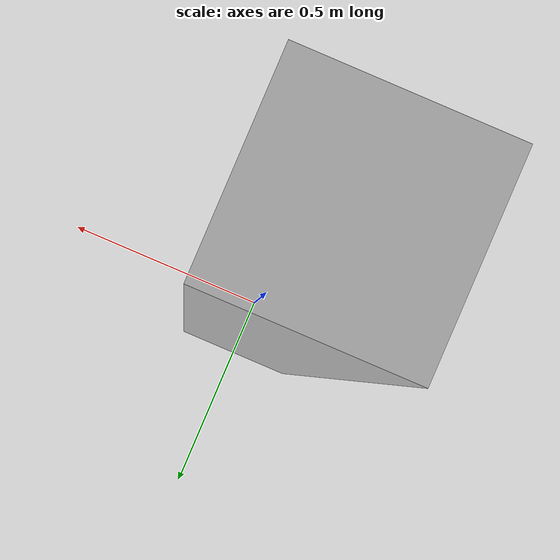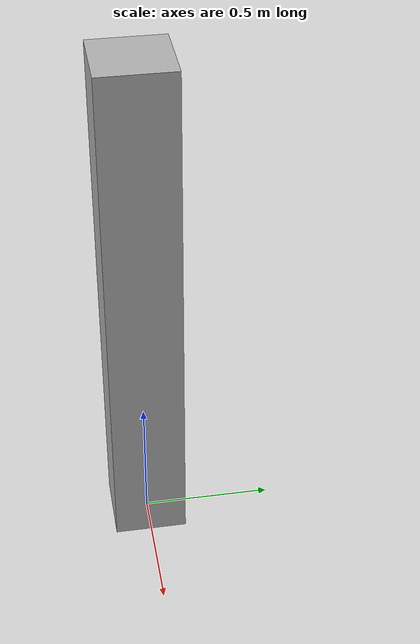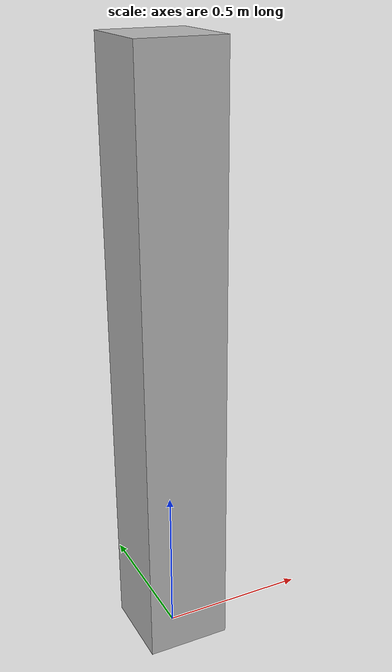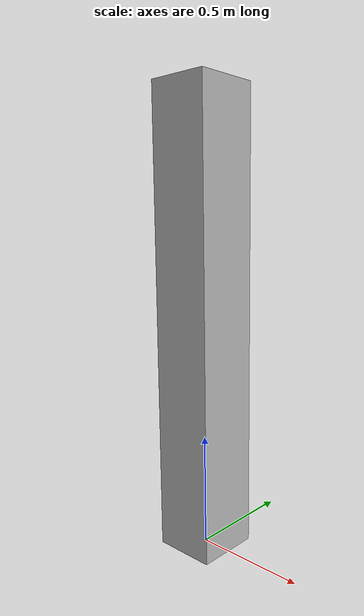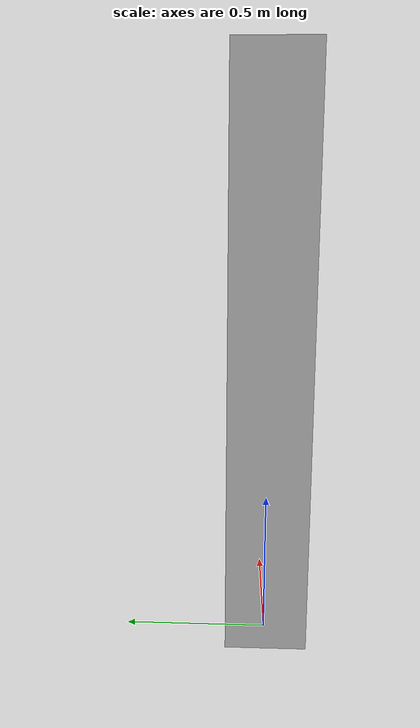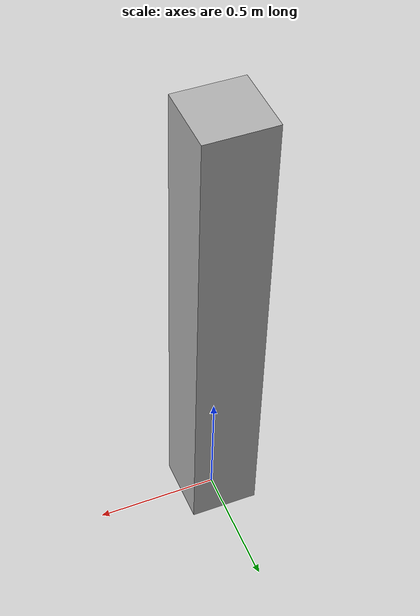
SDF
<?xml version="1.0"?>
<sdf version="1.6">
  <model name="rgo2015_final/tv/pole">
    <link name="1_link">
      <collision name="1_col">
        <geometry>
          <box>
            <size>0.28 0.28 2.0</size>
          </box>
        </geometry>
      </collision>
      <visual name="1_vis">
        <geometry>
          <box>
            <size>0.28 0.28 2.0</size>
          </box>
        </geometry>
        <material>
          <ambient>0.7 0.7 0.7 1</ambient>
        </material>
      </visual>
      <pose>0.0 0.0 1.0 0 0 0</pose>
    </link>
    <static>true</static>
  </model>
</sdf>
